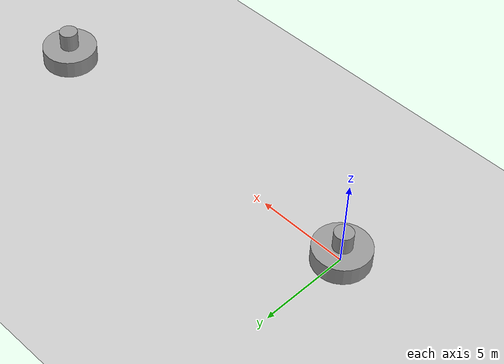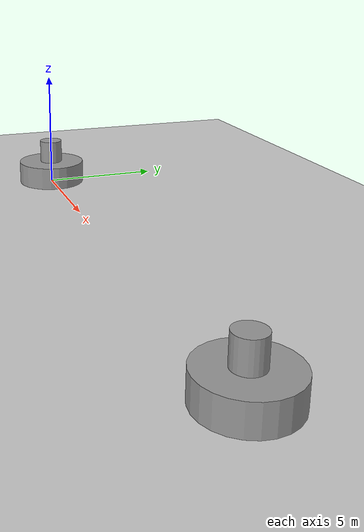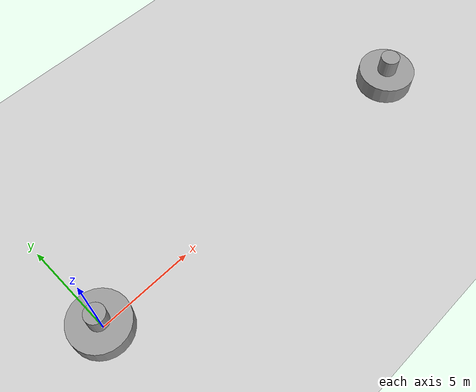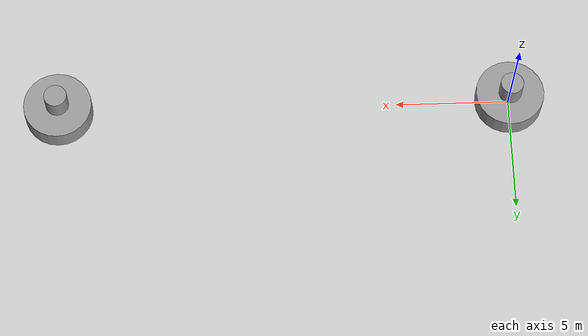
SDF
<?xml version="1.0" ?>
<sdf version="1.5">
  <world name="actuator_example_world">

    <include>
      <uri>model://sun</uri>
    </include>

    <!-- A ground plane -->
    <include>
      <uri>model://ground_plane</uri>
    </include>

    <model name='actuator_example'>
      <link name='top'>
        <visual name='top_visual'>
          <pose>0 0 1.5 0 -0 0</pose>
          <geometry>
            <cylinder>
              <radius>0.5</radius>
              <length>1</length>
            </cylinder>
          </geometry>
          <material>
            <script>
              <uri>file://media/materials/scripts/gazebo.material</uri>
              <name>Gazebo/Grey</name>
            </script>
          </material>
        </visual>
         <collision name='top_collision'>
          <geometry>
            <cylinder>
              <radius>0.5</radius>
              <length>1</length>
            </cylinder>
          </geometry>
          <pose>0 0 1.5 0 0 0</pose>
        </collision>
        <gravity>1</gravity>
        <self_collide>0</self_collide>
        <kinematic>0</kinematic>
        <inertial>
          <mass>1</mass>
          <inertia>
            <ixx>1</ixx>
            <ixy>0</ixy>
            <ixz>0</ixz>
            <iyy>1</iyy>
            <iyz>0</iyz>
            <izz>1</izz>
          </inertia>
        </inertial>
      </link>
      <link name='base'>
        <visual name='base_visual'>
          <pose>0 0 0.5 0 0 0</pose>
          <geometry>
            <cylinder>
              <radius>1.5</radius>
              <length>1</length>
            </cylinder>
          </geometry>
          <material>
            <script>
              <uri>file://media/materials/scripts/gazebo.material</uri>
              <name>Gazebo/Grey</name>
            </script>
          </material>
        </visual>
         <collision name='base_collision'>
          <geometry>
            <cylinder>
              <radius>1.5</radius>
              <length>1</length>
            </cylinder>
          </geometry>
          <pose>0 0 0.5 0 0 0</pose>
        </collision>
        <gravity>1</gravity>
        <self_collide>0</self_collide>
        <kinematic>0</kinematic>
        <inertial>
          <mass>1</mass>
          <pose>0 0 0 0 -0 0</pose>
          <inertia>
            <ixx>1</ixx>
            <ixy>0</ixy>
            <ixz>0</ixz>
            <iyy>1</iyy>
            <iyz>0</iyz>
            <izz>1</izz>
          </inertia>
        </inertial>
      </link>
      <joint name='JOINT_0' type='revolute'>
        <parent>base</parent>
        <child>top</child>
        <axis>
          <xyz>0 0 1</xyz>
          <use_parent_model_frame>0</use_parent_model_frame>
          <limit>
            <lower>1e-16</lower>
            <upper>1e16</upper>
          </limit>
        </axis>
        <pose>0 0 1 0 -0 0</pose>
      </joint>
      <static>0</static>
      <allow_auto_disable>1</allow_auto_disable>

      <plugin name="actuator_plugin" filename="libActuatorPlugin.so">
        <actuator>
          <name>actuator_0</name>
          <joint>JOINT_0</joint>
          <index>0</index>
          <type>electric_motor</type>
          <power>20</power>
          <max_velocity>6</max_velocity>
          <max_torque>10.0</max_torque>
        </actuator>
      </plugin>
    </model>

    <model name='unactuated_example'>
      <pose>20 0 0 0 0 0</pose>
      <link name='top'>
        <visual name='top_visual'>
          <pose>0 0 1.5 0 -0 0</pose>
          <geometry>
            <cylinder>
              <radius>0.5</radius>
              <length>1</length>
            </cylinder>
          </geometry>
          <material>
            <script>
              <uri>file://media/materials/scripts/gazebo.material</uri>
              <name>Gazebo/Grey</name>
            </script>
          </material>
        </visual>
        <collision name='top_collision'>
          <geometry>
            <cylinder>
              <radius>0.5</radius>
              <length>1</length>
            </cylinder>
          </geometry>
          <pose>0 0 1.5 0 0 0</pose>
        </collision>
        <gravity>1</gravity>
        <self_collide>0</self_collide>
        <kinematic>0</kinematic>
        <inertial>
          <mass>1</mass>
          <inertia>
            <ixx>1</ixx>
            <ixy>0</ixy>
            <ixz>0</ixz>
            <iyy>1</iyy>
            <iyz>0</iyz>
            <izz>1</izz>
          </inertia>
        </inertial>
      </link>
      <link name='base'>
        <visual name='base_visual'>
          <pose>0 0 0.5 0 0 0</pose>
          <geometry>
            <cylinder>
              <radius>1.5</radius>
              <length>1</length>
            </cylinder>
          </geometry>
          <material>
            <script>
              <uri>file://media/materials/scripts/gazebo.material</uri>
              <name>Gazebo/Grey</name>
            </script>
          </material>
        </visual>
        <collision name='base_collision'>
          <geometry>
            <cylinder>
              <radius>1.5</radius>
              <length>1</length>
            </cylinder>
          </geometry>
          <pose>0 0 0.5 0 0 0</pose>
        </collision>
        <gravity>1</gravity>
        <self_collide>0</self_collide>
        <kinematic>0</kinematic>
        <inertial>
          <mass>1</mass>
          <pose>0 0 0 0 -0 0</pose>
          <inertia>
            <ixx>1</ixx>
            <ixy>0</ixy>
            <ixz>0</ixz>
            <iyy>1</iyy>
            <iyz>0</iyz>
            <izz>1</izz>
          </inertia>
        </inertial>
      </link>
      <joint name='JOINT_0' type='revolute'>
        <parent>base</parent>
        <child>top</child>
        <axis>
          <xyz>0 0 1</xyz>
          <use_parent_model_frame>0</use_parent_model_frame>
          <limit>
            <lower>1e-16</lower>
            <upper>1e16</upper>
          </limit>
        </axis>
        <pose>0 0 1 0 0 0</pose>
      </joint>
      <static>0</static>
      <allow_auto_disable>1</allow_auto_disable>
    </model>

  </world>
</sdf>
